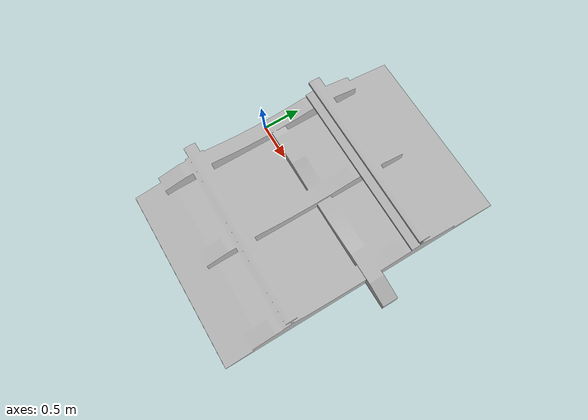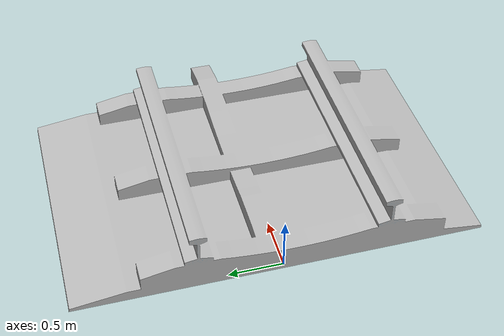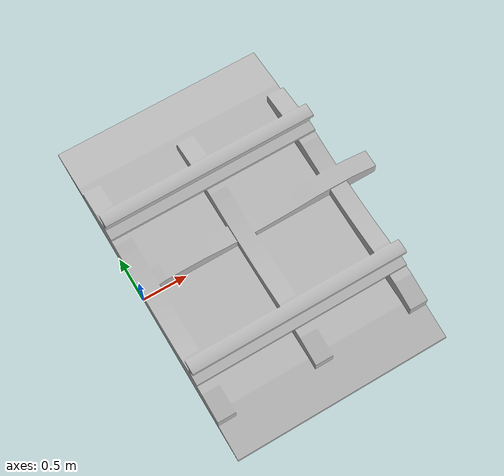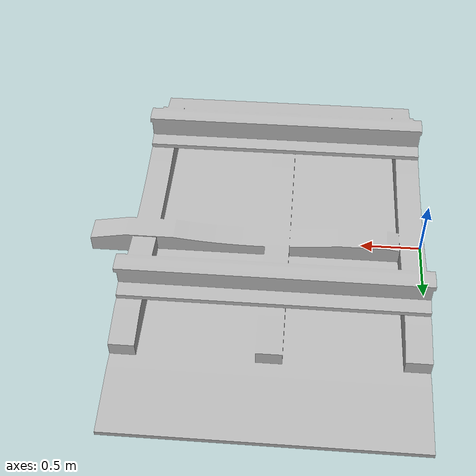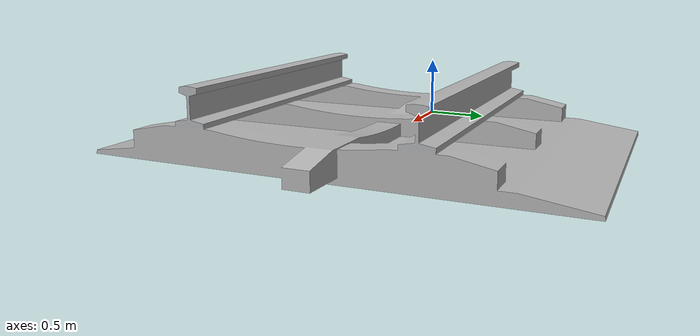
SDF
<?xml version="1.0"?>
<sdf version="1.5">
  <model name="railway">
    <static>true</static>
    <link name="link">
      <visual name="visual">
        <geometry>
          <mesh>
            <uri>model://railway/meshes/model.dae</uri>
          </mesh>
        </geometry>
      </visual>
    </link>
  </model>
</sdf>
